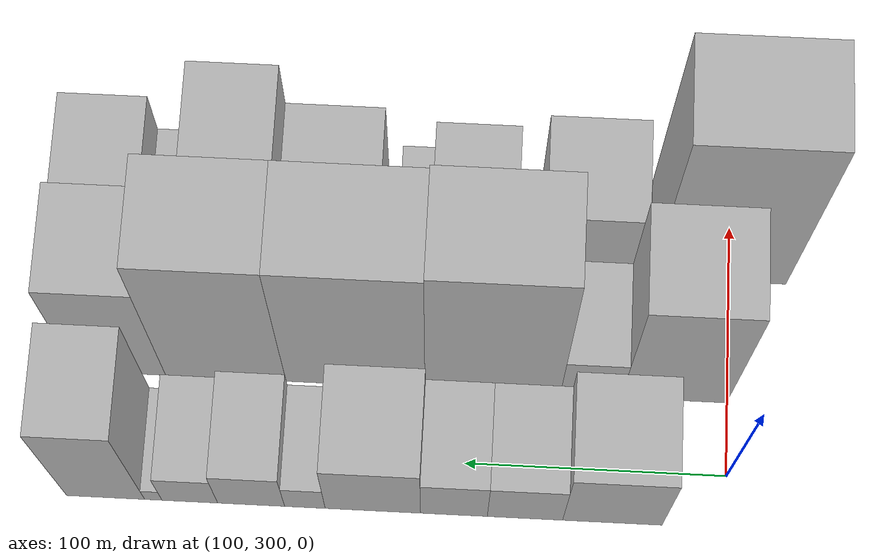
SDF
<sdf version="1.6">
 <world name="default">
  <model name="building_21">
   <static>1</static>
   <pose>100.0000 343.0407 0 0.000000 0.000000 0.000000</pose>
   <link name="link">
    <pose>0 0 34.50 0 0 0</pose>
    <collision name="collision"><geometry><box><size>40.0000 37.7409 69.0000</size></box></geometry></collision>
    <visual name="visual">
     <cast_shadows>0</cast_shadows>
     <geometry><box><size>40.0000 37.7409 69.0000</size></box></geometry>
     <material>
      <script>
       <uri>model://HANNAS_wall/materials/scripts</uri>
       <uri>model://HANNAS_wall/materials/textures</uri>
       <name>vrc/HANNAS_wall</name>
      </script>
     </material>
    </visual>
   </link>
  </model>
  <model name="building_22">
   <static>1</static>
   <pose>100.0000 376.2095 0 0.000000 0.000000 0.000000</pose>
   <link name="link">
    <pose>0 0 24.00 0 0 0</pose>
    <collision name="collision"><geometry><box><size>40.0000 28.5967 48.0000</size></box></geometry></collision>
    <visual name="visual">
     <cast_shadows>0</cast_shadows>
     <geometry><box><size>40.0000 28.5967 48.0000</size></box></geometry>
     <material>
      <script>
       <uri>model://HANNAS_wall/materials/scripts</uri>
       <uri>model://HANNAS_wall/materials/textures</uri>
       <name>vrc/HANNAS_wall</name>
      </script>
     </material>
    </visual>
   </link>
  </model>
  <model name="building_23">
   <static>1</static>
   <pose>100.0000 403.1904 0 0.000000 0.000000 0.000000</pose>
   <link name="link">
    <pose>0 0 24.00 0 0 0</pose>
    <collision name="collision"><geometry><box><size>40.0000 25.3651 48.0000</size></box></geometry></collision>
    <visual name="visual">
     <cast_shadows>0</cast_shadows>
     <geometry><box><size>40.0000 25.3651 48.0000</size></box></geometry>
     <material>
      <script>
       <uri>model://HANNAS_wall/materials/scripts</uri>
       <uri>model://HANNAS_wall/materials/textures</uri>
       <name>vrc/HANNAS_wall</name>
      </script>
     </material>
    </visual>
   </link>
  </model>
  <model name="building_24">
   <static>1</static>
   <pose>100.0000 433.9990 0 0.000000 0.000000 0.000000</pose>
   <link name="link">
    <pose>0 0 31.50 0 0 0</pose>
    <collision name="collision"><geometry><box><size>40.0000 36.2522 63.0000</size></box></geometry></collision>
    <visual name="visual">
     <cast_shadows>0</cast_shadows>
     <geometry><box><size>40.0000 36.2522 63.0000</size></box></geometry>
     <material>
      <script>
       <uri>model://HANNAS_wall/materials/scripts</uri>
       <uri>model://HANNAS_wall/materials/textures</uri>
       <name>vrc/HANNAS_wall</name>
      </script>
     </material>
    </visual>
   </link>
  </model>
  <model name="building_25">
   <static>1</static>
   <pose>100.0000 459.8254 0 0.000000 0.000000 0.000000</pose>
   <link name="link">
    <pose>0 0 15.00 0 0 0</pose>
    <collision name="collision"><geometry><box><size>40.0000 15.4006 30.0000</size></box></geometry></collision>
    <visual name="visual">
     <cast_shadows>0</cast_shadows>
     <geometry><box><size>40.0000 15.4006 30.0000</size></box></geometry>
     <material>
      <script>
       <uri>model://HANNAS_wall/materials/scripts</uri>
       <uri>model://HANNAS_wall/materials/textures</uri>
       <name>vrc/HANNAS_wall</name>
      </script>
     </material>
    </visual>
   </link>
  </model>
  <model name="building_26">
   <static>1</static>
   <pose>100.0000 480.3086 0 0.000000 0.000000 0.000000</pose>
   <link name="link">
    <pose>0 0 22.50 0 0 0</pose>
    <collision name="collision"><geometry><box><size>40.0000 25.5657 45.0000</size></box></geometry></collision>
    <visual name="visual">
     <cast_shadows>0</cast_shadows>
     <geometry><box><size>40.0000 25.5657 45.0000</size></box></geometry>
     <material>
      <script>
       <uri>model://HANNAS_wall/materials/scripts</uri>
       <uri>model://HANNAS_wall/materials/textures</uri>
       <name>vrc/HANNAS_wall</name>
      </script>
     </material>
    </visual>
   </link>
  </model>
  <model name="building_27">
   <static>1</static>
   <pose>100.0000 503.7070 0 0.000000 0.000000 0.000000</pose>
   <link name="link">
    <pose>0 0 18.00 0 0 0</pose>
    <collision name="collision"><geometry><box><size>40.0000 21.2311 36.0000</size></box></geometry></collision>
    <visual name="visual">
     <cast_shadows>0</cast_shadows>
     <geometry><box><size>40.0000 21.2311 36.0000</size></box></geometry>
     <material>
      <script>
       <uri>model://HANNAS_wall/materials/scripts</uri>
       <uri>model://HANNAS_wall/materials/textures</uri>
       <name>vrc/HANNAS_wall</name>
      </script>
     </material>
    </visual>
   </link>
  </model>
  <model name="building_28">
   <static>1</static>
   <pose>100.0000 517.6253 0 0.000000 0.000000 0.000000</pose>
   <link name="link">
    <pose>0 0 7.50 0 0 0</pose>
    <collision name="collision"><geometry><box><size>40.0000 6.6057 15.0000</size></box></geometry></collision>
    <visual name="visual">
     <cast_shadows>0</cast_shadows>
     <geometry><box><size>40.0000 6.6057 15.0000</size></box></geometry>
     <material>
      <script>
       <uri>model://HANNAS_wall/materials/scripts</uri>
       <uri>model://HANNAS_wall/materials/textures</uri>
       <name>vrc/HANNAS_wall</name>
      </script>
     </material>
    </visual>
   </link>
  </model>
  <model name="building_29">
   <static>1</static>
   <pose>100.0000 535.8227 0 0.000000 0.000000 0.000000</pose>
   <link name="link">
    <pose>0 0 49.50 0 0 0</pose>
    <collision name="collision"><geometry><box><size>40.0000 29.7891 99.0000</size></box></geometry></collision>
    <visual name="visual">
     <cast_shadows>0</cast_shadows>
     <geometry><box><size>40.0000 29.7891 99.0000</size></box></geometry>
     <material>
      <script>
       <uri>model://HANNAS_wall/materials/scripts</uri>
       <uri>model://HANNAS_wall/materials/textures</uri>
       <name>vrc/HANNAS_wall</name>
      </script>
     </material>
    </visual>
   </link>
  </model>
  <model name="building_56">
   <static>1</static>
   <pose>149.0000 320.6971 0 0.000000 0.000000 0.000000</pose>
   <link name="link">
    <pose>0 0 57.00 0 0 0</pose>
    <collision name="collision"><geometry><box><size>40.0000 40.7116 114.0000</size></box></geometry></collision>
    <visual name="visual">
     <cast_shadows>0</cast_shadows>
     <geometry><box><size>40.0000 40.7116 114.0000</size></box></geometry>
     <material>
      <script>
       <uri>model://HANNAS_wall/materials/scripts</uri>
       <uri>model://HANNAS_wall/materials/textures</uri>
       <name>vrc/HANNAS_wall</name>
      </script>
     </material>
    </visual>
   </link>
  </model>
  <model name="building_57">
   <static>1</static>
   <pose>149.0000 352.7675 0 0.000000 0.000000 0.000000</pose>
   <link name="link">
    <pose>0 0 22.50 0 0 0</pose>
    <collision name="collision"><geometry><box><size>40.0000 23.4290 45.0000</size></box></geometry></collision>
    <visual name="visual">
     <cast_shadows>0</cast_shadows>
     <geometry><box><size>40.0000 23.4290 45.0000</size></box></geometry>
     <material>
      <script>
       <uri>model://HANNAS_wall/materials/scripts</uri>
       <uri>model://HANNAS_wall/materials/textures</uri>
       <name>vrc/HANNAS_wall</name>
      </script>
     </material>
    </visual>
   </link>
  </model>
  <model name="building_58">
   <static>1</static>
   <pose>149.0000 390.6011 0 0.000000 0.000000 0.000000</pose>
   <link name="link">
    <pose>0 0 70.50 0 0 0</pose>
    <collision name="collision"><geometry><box><size>40.0000 52.2381 141.0000</size></box></geometry></collision>
    <visual name="visual">
     <cast_shadows>0</cast_shadows>
     <geometry><box><size>40.0000 52.2381 141.0000</size></box></geometry>
     <material>
      <script>
       <uri>model://HANNAS_wall/materials/scripts</uri>
       <uri>model://HANNAS_wall/materials/textures</uri>
       <name>vrc/HANNAS_wall</name>
      </script>
     </material>
    </visual>
   </link>
  </model>
  <model name="building_59">
   <static>1</static>
   <pose>149.0000 443.5826 0 0.000000 0.000000 0.000000</pose>
   <link name="link">
    <pose>0 0 69.00 0 0 0</pose>
    <collision name="collision"><geometry><box><size>40.0000 53.7249 138.0000</size></box></geometry></collision>
    <visual name="visual">
     <cast_shadows>0</cast_shadows>
     <geometry><box><size>40.0000 53.7249 138.0000</size></box></geometry>
     <material>
      <script>
       <uri>model://HANNAS_wall/materials/scripts</uri>
       <uri>model://HANNAS_wall/materials/textures</uri>
       <name>vrc/HANNAS_wall</name>
      </script>
     </material>
    </visual>
   </link>
  </model>
  <model name="building_60">
   <static>1</static>
   <pose>149.0000 493.7736 0 0.000000 0.000000 0.000000</pose>
   <link name="link">
    <pose>0 0 69.00 0 0 0</pose>
    <collision name="collision"><geometry><box><size>40.0000 46.6572 138.0000</size></box></geometry></collision>
    <visual name="visual">
     <cast_shadows>0</cast_shadows>
     <geometry><box><size>40.0000 46.6572 138.0000</size></box></geometry>
     <material>
      <script>
       <uri>model://HANNAS_wall/materials/scripts</uri>
       <uri>model://HANNAS_wall/materials/textures</uri>
       <name>vrc/HANNAS_wall</name>
      </script>
     </material>
    </visual>
   </link>
  </model>
  <model name="building_61">
   <static>1</static>
   <pose>149.0000 534.5299 0 0.000000 0.000000 0.000000</pose>
   <link name="link">
    <pose>0 0 52.50 0 0 0</pose>
    <collision name="collision"><geometry><box><size>40.0000 34.8553 105.0000</size></box></geometry></collision>
    <visual name="visual">
     <cast_shadows>0</cast_shadows>
     <geometry><box><size>40.0000 34.8553 105.0000</size></box></geometry>
     <material>
      <script>
       <uri>model://HANNAS_wall/materials/scripts</uri>
       <uri>model://HANNAS_wall/materials/textures</uri>
       <name>vrc/HANNAS_wall</name>
      </script>
     </material>
    </visual>
   </link>
  </model>
  <model name="building_83">
   <static>1</static>
   <pose>198.0000 304.1840 0 0.000000 0.000000 0.000000</pose>
   <link name="link">
    <pose>0 0 73.50 0 0 0</pose>
    <collision name="collision"><geometry><box><size>40.0000 52.9758 147.0000</size></box></geometry></collision>
    <visual name="visual">
     <cast_shadows>0</cast_shadows>
     <geometry><box><size>40.0000 52.9758 147.0000</size></box></geometry>
     <material>
      <script>
       <uri>model://HANNAS_wall/materials/scripts</uri>
       <uri>model://HANNAS_wall/materials/textures</uri>
       <name>vrc/HANNAS_wall</name>
      </script>
     </material>
    </visual>
   </link>
  </model>
  <model name="building_84">
   <static>1</static>
   <pose>198.0000 355.5446 0 0.000000 0.000000 0.000000</pose>
   <link name="link">
    <pose>0 0 33.00 0 0 0</pose>
    <collision name="collision"><geometry><box><size>40.0000 37.7453 66.0000</size></box></geometry></collision>
    <visual name="visual">
     <cast_shadows>0</cast_shadows>
     <geometry><box><size>40.0000 37.7453 66.0000</size></box></geometry>
     <material>
      <script>
       <uri>model://HANNAS_wall/materials/scripts</uri>
       <uri>model://HANNAS_wall/materials/textures</uri>
       <name>vrc/HANNAS_wall</name>
      </script>
     </material>
    </visual>
   </link>
  </model>
  <model name="building_85">
   <static>1</static>
   <pose>198.0000 400.5529 0 0.000000 0.000000 0.000000</pose>
   <link name="link">
    <pose>0 0 27.00 0 0 0</pose>
    <collision name="collision"><geometry><box><size>40.0000 32.2712 54.0000</size></box></geometry></collision>
    <visual name="visual">
     <cast_shadows>0</cast_shadows>
     <geometry><box><size>40.0000 32.2712 54.0000</size></box></geometry>
     <material>
      <script>
       <uri>model://HANNAS_wall/materials/scripts</uri>
       <uri>model://HANNAS_wall/materials/textures</uri>
       <name>vrc/HANNAS_wall</name>
      </script>
     </material>
    </visual>
   </link>
  </model>
  <model name="building_86">
   <static>1</static>
   <pose>198.0000 423.1226 0 0.000000 0.000000 0.000000</pose>
   <link name="link">
    <pose>0 0 13.50 0 0 0</pose>
    <collision name="collision"><geometry><box><size>40.0000 12.8683 27.0000</size></box></geometry></collision>
    <visual name="visual">
     <cast_shadows>0</cast_shadows>
     <geometry><box><size>40.0000 12.8683 27.0000</size></box></geometry>
     <material>
      <script>
       <uri>model://HANNAS_wall/materials/scripts</uri>
       <uri>model://HANNAS_wall/materials/textures</uri>
       <name>vrc/HANNAS_wall</name>
      </script>
     </material>
    </visual>
   </link>
  </model>
  <model name="building_87">
   <static>1</static>
   <pose>198.0000 454.1565 0 0.000000 0.000000 0.000000</pose>
   <link name="link">
    <pose>0 0 33.00 0 0 0</pose>
    <collision name="collision"><geometry><box><size>40.0000 37.1994 66.0000</size></box></geometry></collision>
    <visual name="visual">
     <cast_shadows>0</cast_shadows>
     <geometry><box><size>40.0000 37.1994 66.0000</size></box></geometry>
     <material>
      <script>
       <uri>model://HANNAS_wall/materials/scripts</uri>
       <uri>model://HANNAS_wall/materials/textures</uri>
       <name>vrc/HANNAS_wall</name>
      </script>
     </material>
    </visual>
   </link>
  </model>
  <model name="building_88">
   <static>1</static>
   <pose>198.0000 489.4118 0 0.000000 0.000000 0.000000</pose>
   <link name="link">
    <pose>0 0 51.00 0 0 0</pose>
    <collision name="collision"><geometry><box><size>40.0000 33.3111 102.0000</size></box></geometry></collision>
    <visual name="visual">
     <cast_shadows>0</cast_shadows>
     <geometry><box><size>40.0000 33.3111 102.0000</size></box></geometry>
     <material>
      <script>
       <uri>model://HANNAS_wall/materials/scripts</uri>
       <uri>model://HANNAS_wall/materials/textures</uri>
       <name>vrc/HANNAS_wall</name>
      </script>
     </material>
    </visual>
   </link>
  </model>
  <model name="building_89">
   <static>1</static>
   <pose>198.0000 515.0490 0 0.000000 0.000000 0.000000</pose>
   <link name="link">
    <pose>0 0 16.50 0 0 0</pose>
    <collision name="collision"><geometry><box><size>40.0000 17.9633 33.0000</size></box></geometry></collision>
    <visual name="visual">
     <cast_shadows>0</cast_shadows>
     <geometry><box><size>40.0000 17.9633 33.0000</size></box></geometry>
     <material>
      <script>
       <uri>model://HANNAS_wall/materials/scripts</uri>
       <uri>model://HANNAS_wall/materials/textures</uri>
       <name>vrc/HANNAS_wall</name>
      </script>
     </material>
    </visual>
   </link>
  </model>
  <model name="building_90">
   <static>1</static>
   <pose>198.0000 540.7167 0 0.000000 0.000000 0.000000</pose>
   <link name="link">
    <pose>0 0 33.00 0 0 0</pose>
    <collision name="collision"><geometry><box><size>40.0000 33.3720 66.0000</size></box></geometry></collision>
    <visual name="visual">
     <cast_shadows>0</cast_shadows>
     <geometry><box><size>40.0000 33.3720 66.0000</size></box></geometry>
     <material>
      <script>
       <uri>model://HANNAS_wall/materials/scripts</uri>
       <uri>model://HANNAS_wall/materials/textures</uri>
       <name>vrc/HANNAS_wall</name>
      </script>
     </material>
    </visual>
   </link>
  </model>
 </world>
</sdf>
